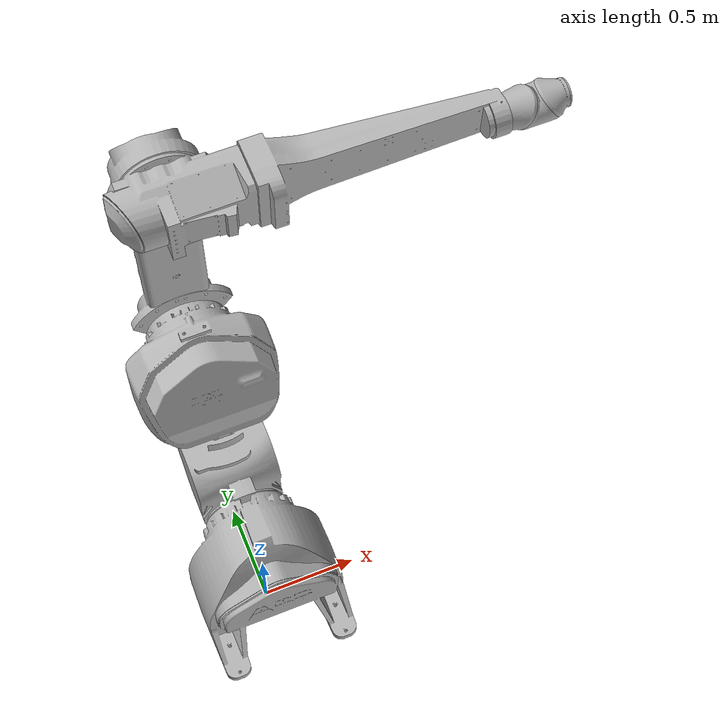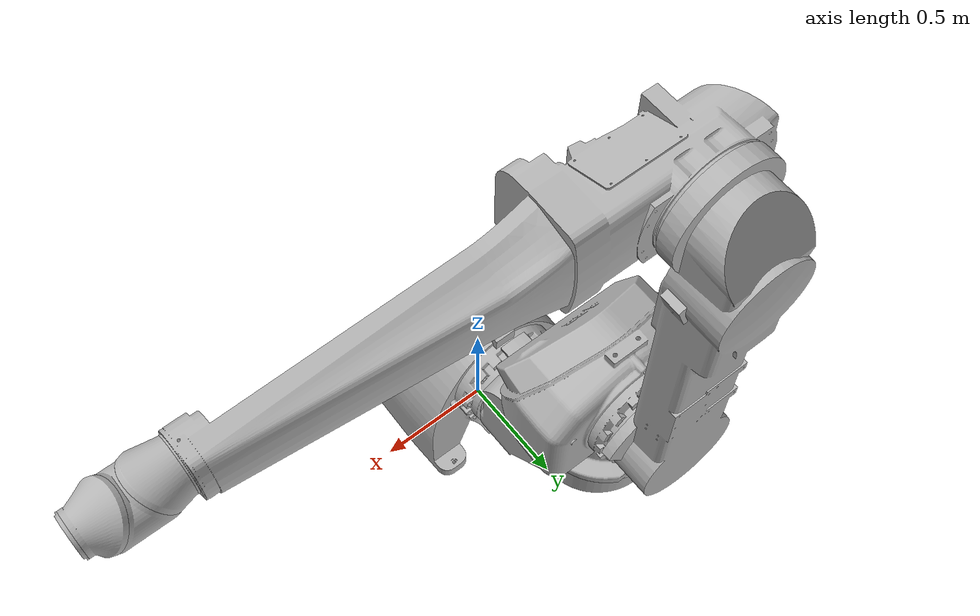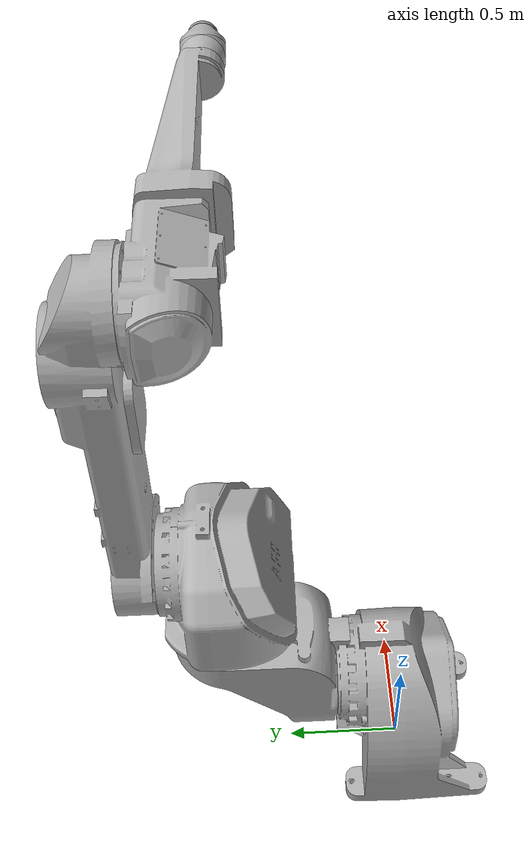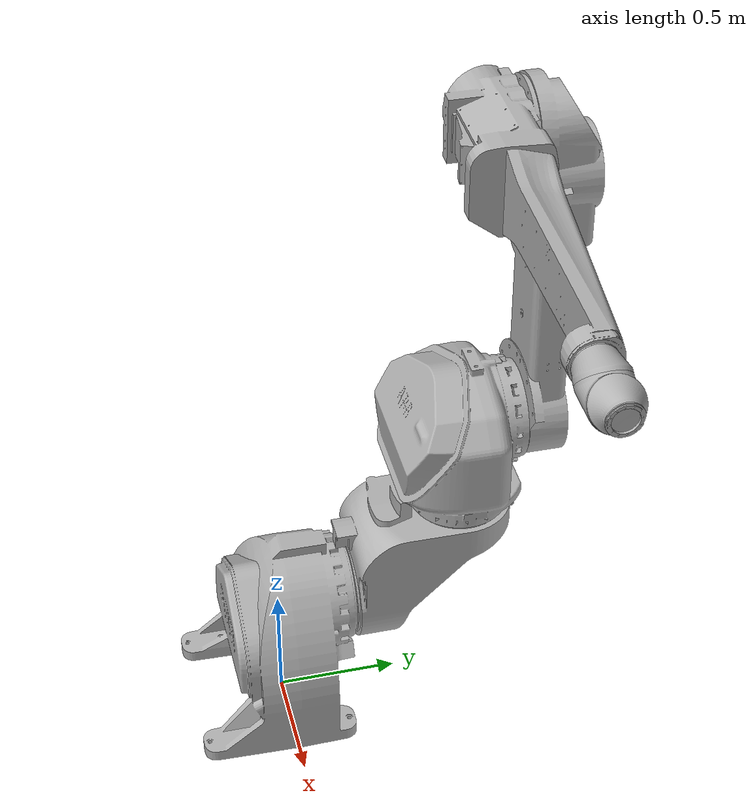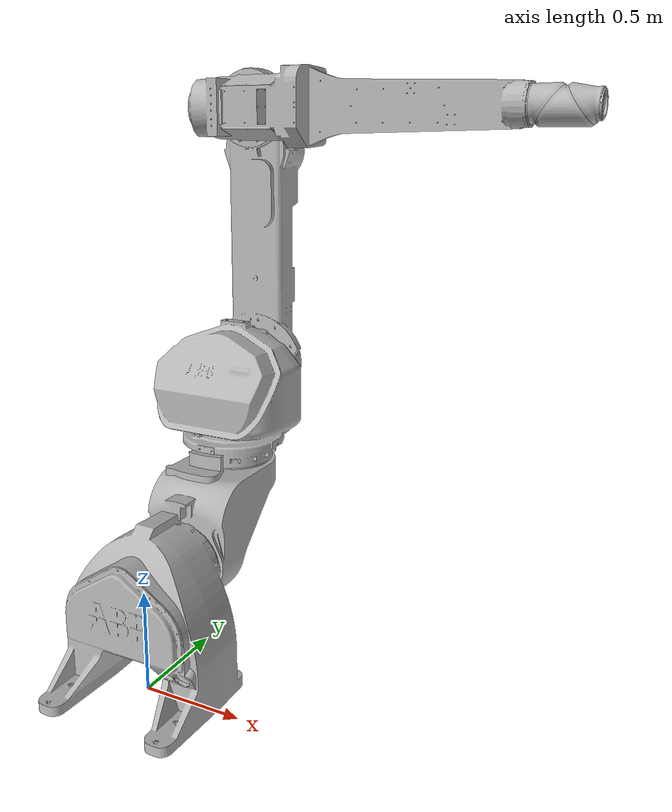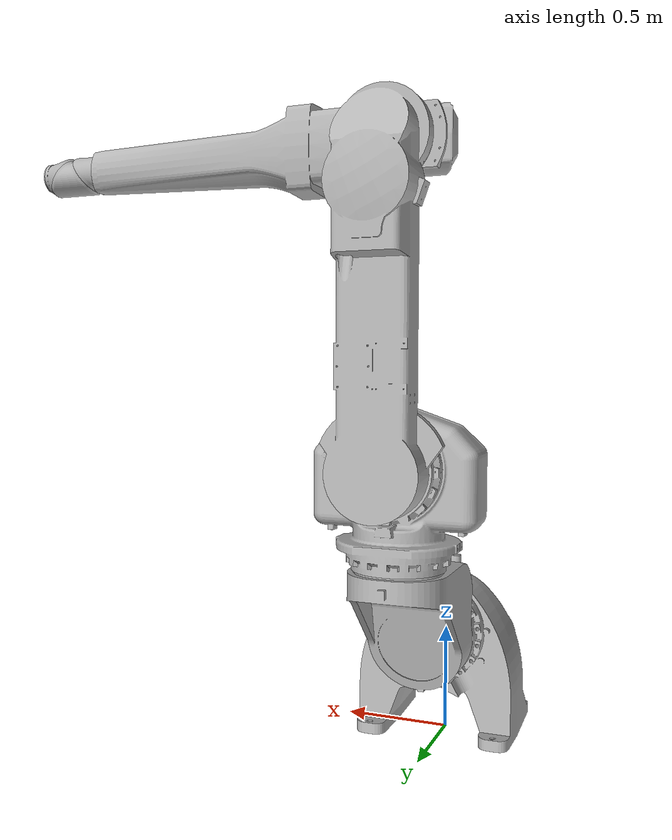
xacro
<?xml version="1.0" ?>
<robot name="irb5500_7axis" xmlns:xacro="http://www.ros.org/wiki/xacro">

<xacro:include filename="$(find abb_irb5500_7axis_support)/urdf/materials.xacro" />
<xacro:include filename="$(find abb_irb5500_7axis_support)/urdf/irb5500_7axis.trans" />
<xacro:include filename="$(find abb_irb5500_7axis_support)/urdf/irb5500_7axis.gazebo" />
<link name="base_link">
  <inertial>
    <origin xyz="0.018926671403852433 0.03635439701106554 0.40145852174959484" rpy="0 0 0"/>
    <mass value="1107.0385298863"/>
    <inertia ixx="61.225944" iyy="90.595486" izz="64.881264" ixy="-0.092907" iyz="-6.385665" ixz="0.046518"/>
  </inertial>
  <visual>
    <origin xyz="0 0 0" rpy="0 0 0"/>
    <geometry>
      <mesh filename="package://abb_irb5500_7axis_support/meshes/base_link.stl" scale="0.001 0.001 0.001"/>
    </geometry>
    <material name="silver"/>
  </visual>
  <collision>
    <origin xyz="0 0 0" rpy="0 0 0"/>
    <geometry>
      <mesh filename="package://abb_irb5500_7axis_support/meshes/base_link.stl" scale="0.001 0.001 0.001"/>
    </geometry>
  </collision>
</link>

<link name="link_1_1">
  <inertial>
    <origin xyz="0.0011555100547077264 0.24509135858373476 0.17382144663815557" rpy="0 0 0"/>
    <mass value="514.8648420210297"/>
    <inertia ixx="30.992741" iyy="22.570346" izz="23.26715" ixy="-0.046007" iyz="-10.318452" ixz="0.056101"/>
  </inertial>
  <visual>
    <origin xyz="-0.01678 -0.29242 -0.53198" rpy="0 0 0"/>
    <geometry>
      <mesh filename="package://abb_irb5500_7axis_support/meshes/link_1_1.stl" scale="0.001 0.001 0.001"/>
    </geometry>
    <material name="silver"/>
  </visual>
  <collision>
    <origin xyz="-0.01678 -0.29242 -0.53198" rpy="0 0 0"/>
    <geometry>
      <mesh filename="package://abb_irb5500_7axis_support/meshes/link_1_1.stl" scale="0.001 0.001 0.001"/>
    </geometry>
  </collision>
</link>

<link name="link_2_1">
  <inertial>
    <origin xyz="0.0012491514615240729 -0.025583333888403836 0.34431214152787903" rpy="0 0 0"/>
    <mass value="1176.3951689096798"/>
    <inertia ixx="50.070546" iyy="64.129491" izz="51.509297" ixy="-0.026244" iyz="-1.140556" ixz="-0.030935"/>
  </inertial>
  <visual>
    <origin xyz="-0.018328 -0.77042 -0.929477" rpy="0 0 0"/>
    <geometry>
      <mesh filename="package://abb_irb5500_7axis_support/meshes/link_2_1.stl" scale="0.001 0.001 0.001"/>
    </geometry>
    <material name="silver"/>
  </visual>
  <collision>
    <origin xyz="-0.018328 -0.77042 -0.929477" rpy="0 0 0"/>
    <geometry>
      <mesh filename="package://abb_irb5500_7axis_support/meshes/link_2_1.stl" scale="0.001 0.001 0.001"/>
    </geometry>
  </collision>
</link>

<link name="link_3_1">
  <inertial>
    <origin xyz="0.0028689107223312145 0.08648406695372635 0.6879406498154552" rpy="0 0 0"/>
    <mass value="723.6999417468929"/>
    <inertia ixx="160.032498" iyy="163.23224" izz="8.467489" ixy="-0.024939" iyz="-2.562707" ixz="-0.618553"/>
  </inertial>
  <visual>
    <origin xyz="-0.020026 -1.00142 -1.365474" rpy="0 0 0"/>
    <geometry>
      <mesh filename="package://abb_irb5500_7axis_support/meshes/link_3_1.stl" scale="0.001 0.001 0.001"/>
    </geometry>
    <material name="silver"/>
  </visual>
  <collision>
    <origin xyz="-0.020026 -1.00142 -1.365474" rpy="0 0 0"/>
    <geometry>
      <mesh filename="package://abb_irb5500_7axis_support/meshes/link_3_1.stl" scale="0.001 0.001 0.001"/>
    </geometry>
  </collision>
</link>

<link name="link_4_1">
  <inertial>
    <origin xyz="0.3972513240326173 -0.14845866938299856 -0.0010321643174204809" rpy="0 0 0"/>
    <mass value="607.3432804807295"/>
    <inertia ixx="6.246992" iyy="118.657638" izz="118.264451" ixy="3.559257" iyz="0.030035" ixz="0.437972"/>
  </inertial>
  <visual>
    <origin xyz="-0.02509 -0.98742 -2.665464" rpy="0 0 0"/>
    <geometry>
      <mesh filename="package://abb_irb5500_7axis_support/meshes/link_4_1.stl" scale="0.001 0.001 0.001"/>
    </geometry>
    <material name="silver"/>
  </visual>
  <collision>
    <origin xyz="-0.02509 -0.98742 -2.665464" rpy="0 0 0"/>
    <geometry>
      <mesh filename="package://abb_irb5500_7axis_support/meshes/link_4_1.stl" scale="0.001 0.001 0.001"/>
    </geometry>
  </collision>
</link>

<link name="link_5_1">
  <inertial>
    <origin xyz="0.04510451484501843 -1.6966850335808914e-07 0.015465258143359417" rpy="0 0 0"/>
    <mass value="13.246564877496217"/>
    <inertia ixx="0.04349" iyy="0.02917" izz="0.036873" ixy="0.0" iyz="-0.0" ixz="-0.006399"/>
  </inertial>
  <visual>
    <origin xyz="-1.466079 -0.76542 -2.659851" rpy="0 0 0"/>
    <geometry>
      <mesh filename="package://abb_irb5500_7axis_support/meshes/link_5_1.stl" scale="0.001 0.001 0.001"/>
    </geometry>
    <material name="silver"/>
  </visual>
  <collision>
    <origin xyz="-1.466079 -0.76542 -2.659851" rpy="0 0 0"/>
    <geometry>
      <mesh filename="package://abb_irb5500_7axis_support/meshes/link_5_1.stl" scale="0.001 0.001 0.001"/>
    </geometry>
  </collision>
</link>

<link name="link_6_1">
  <inertial>
    <origin xyz="0.059847742372347135 -3.194301083642159e-07 -0.022734536484888768" rpy="0 0 0"/>
    <mass value="22.90378370207616"/>
    <inertia ixx="0.078074" iyy="0.075709" izz="0.096705" ixy="-0.0" iyz="0.0" ixz="7.3e-05"/>
  </inertial>
  <visual>
    <origin xyz="-1.54048 -0.76542 -2.65612" rpy="0 0 0"/>
    <geometry>
      <mesh filename="package://abb_irb5500_7axis_support/meshes/link_6_1.stl" scale="0.001 0.001 0.001"/>
    </geometry>
    <material name="silver"/>
  </visual>
  <collision>
    <origin xyz="-1.54048 -0.76542 -2.65612" rpy="0 0 0"/>
    <geometry>
      <mesh filename="package://abb_irb5500_7axis_support/meshes/link_6_1.stl" scale="0.001 0.001 0.001"/>
    </geometry>
  </collision>
</link>

<link name="link_7_1">
  <inertial>
    <origin xyz="0.027381461625446413 -4.779980121716321e-07 0.014960336074338887" rpy="0 0 0"/>
    <mass value="11.027488801145296"/>
    <inertia ixx="0.031573" iyy="0.022716" izz="0.028182" ixy="0.0" iyz="-0.0" ixz="0.005881"/>
  </inertial>
  <visual>
    <origin xyz="-1.660351 -0.76542 -2.655653" rpy="0 0 0"/>
    <geometry>
      <mesh filename="package://abb_irb5500_7axis_support/meshes/link_7_1.stl" scale="0.001 0.001 0.001"/>
    </geometry>
    <material name="silver"/>
  </visual>
  <collision>
    <origin xyz="-1.660351 -0.76542 -2.655653" rpy="0 0 0"/>
    <geometry>
      <mesh filename="package://abb_irb5500_7axis_support/meshes/link_7_1.stl" scale="0.001 0.001 0.001"/>
    </geometry>
  </collision>
</link>

<link name="link_8_1">
  <inertial>
    <origin xyz="0.004368020622074642 -0.00010515307768488302 -0.0001227284237961257" rpy="0 0 0"/>
    <mass value="0.35749934255251287"/>
    <inertia ixx="0.001069" iyy="0.000548" izz="0.000527" ixy="-0.0" iyz="-5e-06" ixz="-2e-06"/>
  </inertial>
  <visual>
    <origin xyz="-1.737286 -0.76542 -2.658795" rpy="0 0 0"/>
    <geometry>
      <mesh filename="package://abb_irb5500_7axis_support/meshes/link_8_1.stl" scale="0.001 0.001 0.001"/>
    </geometry>
    <material name="silver"/>
  </visual>
  <collision>
    <origin xyz="-1.737286 -0.76542 -2.658795" rpy="0 0 0"/>
    <geometry>
      <mesh filename="package://abb_irb5500_7axis_support/meshes/link_8_1.stl" scale="0.001 0.001 0.001"/>
    </geometry>
  </collision>
</link>

<joint name="joint_1" type="revolute">
  <origin xyz="0.001548 0.478 0.397497" rpy="0 0 0"/>
  <parent link="link_1_1"/>
  <child link="link_2_1"/>
  <axis xyz="0.003895 -0.0 0.999992"/>
  <limit upper="3.403392" lower="-0.261799" effort="100" velocity="100"/>
</joint>

<joint name="joint_2" type="revolute">
  <origin xyz="0.001698 0.231 0.435997" rpy="0 0 0"/>
  <parent link="link_2_1"/>
  <child link="link_3_1"/>
  <axis xyz="0.0 1.0 0.0"/>
  <limit upper="2.617994" lower="-1.134464" effort="100" velocity="100"/>
</joint>

<joint name="joint_3" type="revolute">
  <origin xyz="0.005064 -0.014 1.29999" rpy="0 0 0"/>
  <parent link="link_3_1"/>
  <child link="link_4_1"/>
  <axis xyz="-0.0 1.0 -0.0"/>
  <limit upper="1.22173" lower="-1.22173" effort="100" velocity="100"/>
</joint>

<joint name="joint_4" type="revolute">
  <origin xyz="1.440989 -0.222 -0.005613" rpy="0 0 0"/>
  <parent link="link_4_1"/>
  <child link="link_5_1"/>
  <axis xyz="0.999992 -0.0 -0.003895"/>
  <limit upper="6.0" lower="-6.0" effort="100" velocity="100"/>
</joint>

<joint name="joint_5" type="revolute">
  <origin xyz="0.074401 0.0 -0.003731" rpy="0 0 0"/>
  <parent link="link_5_1"/>
  <child link="link_6_1"/>
  <axis xyz="0.816912 -0.0 -0.576763"/>
  <limit upper="6.0" lower="-6.0" effort="100" velocity="100"/>
</joint>

<joint name="joint_8" type="fixed">
  <origin xyz="0.119871 0.0 -0.000467" rpy="0 0 0"/>
  <parent link="link_6_1"/>
  <child link="link_7_1"/>
</joint>

<joint name="joint_6" type="revolute">
  <origin xyz="0.076935 0.0 0.003142" rpy="0 0 0"/>
  <parent link="link_7_1"/>
  <child link="link_8_1"/>
  <axis xyz="0.999992 -0.0 -0.003895"/>
  <limit upper="6.0" lower="-6.0" effort="100" velocity="100"/>
</joint>

<joint name="joint_7" type="revolute">
  <origin xyz="0.01678 0.29242 0.53198" rpy="0 0 0"/>
  <parent link="base_link"/>
  <child link="link_1_1"/>
  <axis xyz="0.0 -1.0 0.0"/>
  <limit upper="2.356194" lower="-2.356194" effort="100" velocity="100"/>
</joint>

<link name="world"/>

<joint name="world_joint" type="fixed">
  <origin rpy="0 0 0" xyz="0 0 0"/>
  <parent link="world"/>
  <child link="base_link"/>
</joint>

</robot>

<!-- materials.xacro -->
<robot name="irb5500_7axis" xmlns:xacro="http://www.ros.org/wiki/xacro" >

<material name="silver">
  <color rgba="0.700 0.700 0.700 1.000"/>
</material>

</robot>

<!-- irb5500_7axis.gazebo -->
<robot name="irb5500_7axis" xmlns:xacro="http://www.ros.org/wiki/xacro" >

<xacro:property name="body_color" value="Gazebo/Silver" />

<gazebo>
  <plugin name="control" filename="libgazebo_ros_control.so"/>
</gazebo>
<gazebo reference="base_link">
  <material>${body_color}</material>
  <mu1>0.2</mu1>
  <mu2>0.2</mu2>
  <selfCollide>true</selfCollide>
  <gravity>true</gravity>
</gazebo>

<gazebo reference="link_1_1">
  <material>${body_color}</material>
  <mu1>0.2</mu1>
  <mu2>0.2</mu2>
  <selfCollide>true</selfCollide>
</gazebo>

<gazebo reference="link_2_1">
  <material>${body_color}</material>
  <mu1>0.2</mu1>
  <mu2>0.2</mu2>
  <selfCollide>true</selfCollide>
</gazebo>

<gazebo reference="link_3_1">
  <material>${body_color}</material>
  <mu1>0.2</mu1>
  <mu2>0.2</mu2>
  <selfCollide>true</selfCollide>
</gazebo>

<gazebo reference="link_4_1">
  <material>${body_color}</material>
  <mu1>0.2</mu1>
  <mu2>0.2</mu2>
  <selfCollide>true</selfCollide>
</gazebo>

<gazebo reference="link_5_1">
  <material>${body_color}</material>
  <mu1>0.2</mu1>
  <mu2>0.2</mu2>
  <selfCollide>true</selfCollide>
</gazebo>

<gazebo reference="link_6_1">
  <material>${body_color}</material>
  <mu1>0.2</mu1>
  <mu2>0.2</mu2>
  <selfCollide>true</selfCollide>
</gazebo>

<gazebo reference="link_7_1">
  <material>${body_color}</material>
  <mu1>0.2</mu1>
  <mu2>0.2</mu2>
  <selfCollide>true</selfCollide>
</gazebo>

<gazebo reference="link_8_1">
  <material>${body_color}</material>
  <mu1>0.2</mu1>
  <mu2>0.2</mu2>
  <selfCollide>true</selfCollide>
</gazebo>

</robot>
